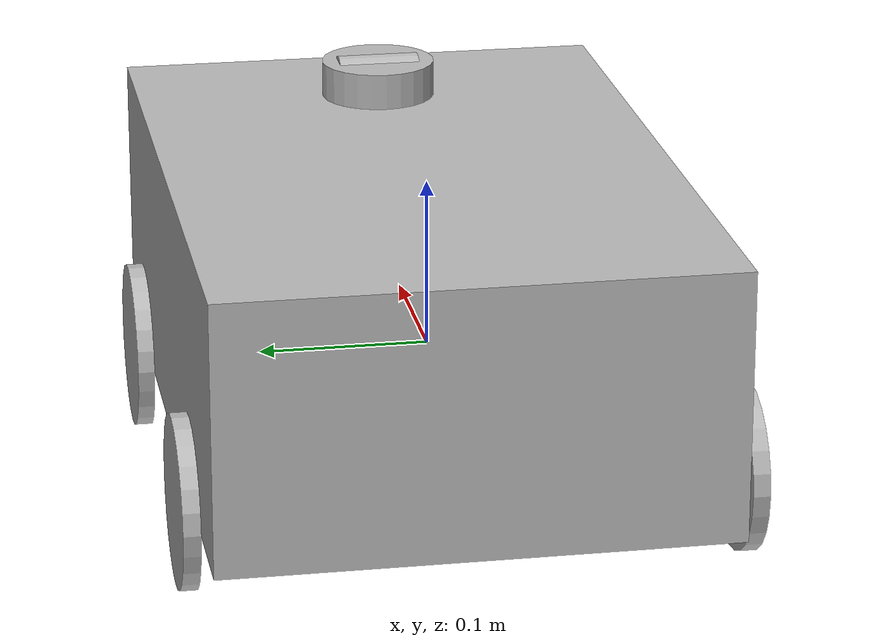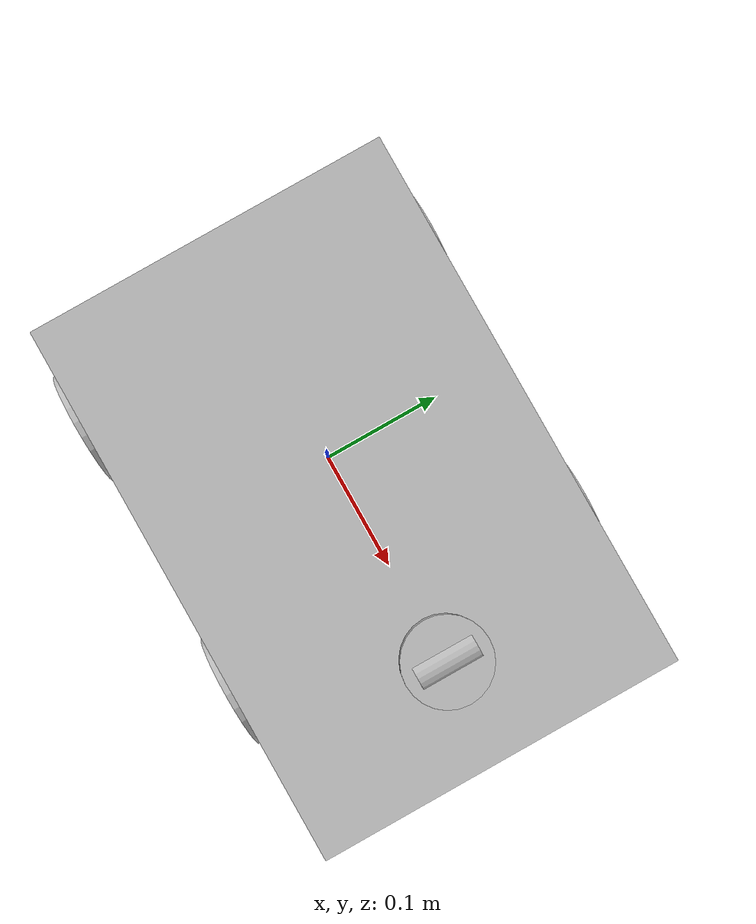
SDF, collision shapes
<?xml version="1.0" ?>
<sdf version="1.7">

    <model name='robot'>
	    <pose>0 0 0 0 0 0</pose>
	    <link name='robot_base'>
		    <pose>0 0 0 0 -0 0</pose>
		    <inertial>
				<pose>0 0 0 0 0 0</pose>
				<mass>9.66</mass>
				<inertia>
					<ixx>0.08</ixx>
					<ixy>0</ixy>
					<ixz>0</ixz>
					<iyy>0.19</iyy>
					<iyz>0</iyz>
					<izz>0.14</izz>
				</inertia>
			</inertial>
			<collision name='robot_base_collision'>
				<pose >0.04 0 0.02 0 -0 0</pose>
				<geometry>
				  <box>
				    <size>0.45 0.3 0.16</size>
				  </box>
				</geometry>
		    </collision>
		    <visual name='robot_base_visual'>
				<pose >0 0 0 0 0 0</pose>
				<geometry>
				  <mesh>
				    <scale>1 1 1</scale>
				    <uri>/home/student/Documents/rover/dae/base.dae</uri>
				  </mesh>
				</geometry>
		    </visual>
	    </link>

	    <link name='robot_wheel0'>
		    <pose>0.1265 -0.16 -0.0384 0 0 0</pose>
		    <inertial>
				<pose>0 0 0 0 0 0</pose>
				<mass>0.075</mass>
				<inertia>
					<ixx>0.00009205</ixx>
					<ixy>0</ixy>
					<ixz>0</ixz>
					<iyy>0.00004662</iyy>
					<iyz>0</iyz>
					<izz>0.00004662</izz>
				</inertia>
			</inertial>
			<collision name='robot_wheel0_collision'>
				<pose >0 0 0 1.57 0 0</pose>
				<geometry>
					<cylinder>
						<radius>0.05</radius>
						<length>0.01</length>
					</cylinder>
				</geometry>
		    </collision>
		    <visual name='robot_wheel0_visual'>
				<pose >0 0 0 0 -0 0</pose>
				<geometry>
				  <mesh>
				    <scale>1 1 1</scale>
				    <uri>/home/student/Documents/rover/dae/wheel.dae</uri>
				  </mesh>
				</geometry>
		    </visual>
	    </link>
	    <joint name='robot_wheel0_joint' type='revolute'>
		    <child>robot_wheel0</child>
		    <parent>robot_base</parent>
		    <axis>
				<xyz>0 1 0</xyz>
				<limit>
					<lower>-1e+16</lower>
					<upper>1e+16</upper>
				</limit>
				<dynamics>
					<spring_reference>0</spring_reference>
					<spring_stiffness>0</spring_stiffness>
				</dynamics>
			</axis>
	    </joint>

	    <link name='robot_wheel1'>
		    <pose>0.1265 0.16 -0.0384 0 0 0</pose>
		    <inertial>
				<pose>0 0 0 0 0 0</pose>
				<mass>0.075</mass>
				<inertia>
					<ixx>0.00009205</ixx>
					<ixy>0</ixy>
					<ixz>0</ixz>
					<iyy>0.00004662</iyy>
					<iyz>0</iyz>
					<izz>0.00004662</izz>
				</inertia>
			</inertial>
			<collision name='robot_wheel1_collision'>
				<pose >0 0 0 1.57 0 0</pose>
				<geometry>
					<cylinder>
						<radius>0.05</radius>
						<length>0.01</length>
					</cylinder>
				</geometry>
		    </collision>
		    <visual name='robot_wheel1_visual'>
				<pose >0 0 0 0 -0 0</pose>
				<geometry>
				  <mesh>
				    <scale>1 1 1</scale>
				    <uri>/home/student/Documents/rover/dae/wheel.dae</uri>
				  </mesh>
				</geometry>
		    </visual>
	    </link>
	    <joint name='robot_wheel1_joint' type='revolute'>
		    <child>robot_wheel1</child>
		    <parent>robot_base</parent>
		    <axis>
				<xyz>0 1 0</xyz>
				<limit>
					<lower>-1e+16</lower>
					<upper>1e+16</upper>
				</limit>
				<dynamics>
					<spring_reference>0</spring_reference>
					<spring_stiffness>0</spring_stiffness>
				</dynamics>
			</axis>
	    </joint>

	    <link name='robot_wheel2'>
		    <pose>-0.1236 -0.16 -0.0384 0 0 0</pose>
		    <inertial>
				<pose>0 0 0 0 0 0</pose>
				<mass>0.075</mass>
				<inertia>
					<ixx>0.00009205</ixx>
					<ixy>0</ixy>
					<ixz>0</ixz>
					<iyy>0.00004662</iyy>
					<iyz>0</iyz>
					<izz>0.00004662</izz>
				</inertia>
			</inertial>
			<collision name='robot_wheel2_collision'>
				<pose >0 0 0 1.57 0 0</pose>
				<geometry>
					<cylinder>
						<radius>0.05</radius>
						<length>0.01</length>
					</cylinder>
				</geometry>
		    </collision>
		    <visual name='robot_wheel2_visual'>
				<pose >0 0 0 0 -0 0</pose>
				<geometry>
				  <mesh>
				    <scale>1 1 1</scale>
				    <uri>/home/student/Documents/rover/dae/wheel.dae</uri>
				  </mesh>
				</geometry>
		    </visual>
	    </link>
	    <joint name='robot_wheel2_joint' type='revolute'>
		    <child>robot_wheel2</child>
		    <parent>robot_base</parent>
		    <axis>
				<xyz>0 1 0</xyz>
				<limit>
					<lower>-1e+16</lower>
					<upper>1e+16</upper>
				</limit>
				<dynamics>
					<spring_reference>0</spring_reference>
					<spring_stiffness>0</spring_stiffness>
				</dynamics>
			</axis>
	    </joint>

	    <link name='robot_wheel3'>
		    <pose>-0.1236 0.16 -0.0384 0 0 0</pose>
		    <inertial>
				<pose>0 0 0 0 0 0</pose>
				<mass>0.075</mass>
				<inertia>
					<ixx>0.00009205</ixx>
					<ixy>0</ixy>
					<ixz>0</ixz>
					<iyy>0.00004662</iyy>
					<iyz>0</iyz>
					<izz>0.00004662</izz>
				</inertia>
			</inertial>
			<collision name='robot_wheel3_collision'>
				<pose >0 0 0 1.57 0 0</pose>
				<geometry>
					<cylinder>
						<radius>0.05</radius>
						<length>0.01</length>
					</cylinder>
				</geometry>
		    </collision>
		    <visual name='robot_wheel3_visual'>
				<pose >0 0 0 0 -0 0</pose>
				<geometry>
				  <mesh>
				    <scale>1 1 1</scale>
				    <uri>/home/student/Documents/rover/dae/wheel.dae</uri>
				  </mesh>
				</geometry>
		    </visual>
	    </link>
	    <joint name='robot_wheel3_joint' type='revolute'>
		    <child>robot_wheel3</child>
		    <parent>robot_base</parent>
		    <axis>
				<xyz>0 1 0</xyz>
				<limit>
					<lower>-1e+16</lower>
					<upper>1e+16</upper>
				</limit>
				<dynamics>
					<spring_reference>0</spring_reference>
					<spring_stiffness>0</spring_stiffness>
				</dynamics>
			</axis>
	    </joint>

	    <link name='robot_mount'>
		    <pose>0.18 0 0.057 0 0 0</pose>
		    <inertial>
				<pose>0 0 0 0 0 0</pose>
				<mass>0.046</mass>
				<inertia>
					<ixx>0.00006057</ixx>
					<ixy>0</ixy>
					<ixz>0</ixz>
					<iyy>0.00001345</iyy>
					<iyz>0</iyz>
					<izz>0.00007059</izz>
				</inertia>
			</inertial>
			<collision name='robot_mount_collision'>
				<pose >0 0 0 0 0 0</pose>
				<geometry>
					<cylinder>
						<radius>0.035</radius>
						<length>0.13</length>
					</cylinder>
				</geometry>
		    </collision>
		    <visual name='robot_mount_visual'>
				<pose >0 0 0 0 -0 0</pose>
				<geometry>
				  <mesh>
				    <scale>1 1 1</scale>
				    <uri>/home/student/Documents/rover/dae/mount.dae</uri>
				  </mesh>
				</geometry>
		    </visual>
	    </link>
	    <joint name='robot_mount_joint' type='revolute'>
		    <child>robot_mount</child>
		    <parent>robot_base</parent>
		    <axis>
				<xyz>0 0 1</xyz>
				<limit>
					<lower>-1e+16</lower>
					<upper>1e+16</upper>
				</limit>
			</axis>
	    </joint>

	    <link name='robot_oko'>
		    <pose>0.18 0 0.11 0 0 0</pose>
		    <inertial>
				<pose>0 0 0 0 0 0</pose>
				<mass>0.034</mass>
				<inertia>
					<ixx>0.00000431</ixx>
					<ixy>0</ixy>
					<ixz>0</ixz>
					<iyy>0.00000706</iyy>
					<iyz>0</iyz>
					<izz>0.00000721</izz>
				</inertia>
			</inertial>
			<collision name='robot_oko_collision'>
				<pose >0 0 0 1.57 0 0</pose>
				<geometry>
					<cylinder>
						<radius>0.015</radius>
						<length>0.05</length>
					</cylinder>
				</geometry>
		    </collision>
		    <visual name='robot_oko_visual'>
				<pose >0 0 0 0 0 0</pose>
				<geometry>
				  <mesh>
				    <scale>1 1 1</scale>
				    <uri>/home/student/Documents/rover/dae/oko.dae</uri>
				  </mesh>
				</geometry>
		    </visual>
	    </link>
	    <joint name='robot_oko_joint' type='revolute'>
		    <child>robot_oko</child>
		    <parent>robot_mount</parent>
		    <axis>
				<xyz>0 1 0</xyz>
				<limit>
					<lower>-1.05</lower>
					<upper>1.05</upper>
				</limit>
			</axis>
	    </joint>

     	<plugin name="ignition::gazebo::systems::DiffDrive" filename="libignition-gazebo-diff-drive-system.so">
		  <num_wheel_pairs>2</num_wheel_pairs>
		  <left_joint>robot_wheel1_joint</left_joint>
		  <left_joint>robot_wheel3_joint</left_joint>
		  <right_joint>robot_wheel0_joint</right_joint>
		  <right_joint>robot_wheel2_joint</right_joint>

		  <!-- kinematics -->
		  <wheel_separation>0.32</wheel_separation>
		  <wheel_diameter>0.1</wheel_diameter>

		  <!-- odometry  -->
		  <odometry_source>world</odometry_source>
		  <odometry_frame>odom</odometry_frame>
		  <robot_base_frame>robot_base</robot_base_frame>

		  <!-- topic & re remappings -->
		  <topic>cmd_vel</topic>
		  <publish_odom>true</publish_odom>
		  <publish_odom_tf>true</publish_odom_tf>
		  <update_rate>100.0</update_rate>
		</plugin>

    </model>

</sdf>
